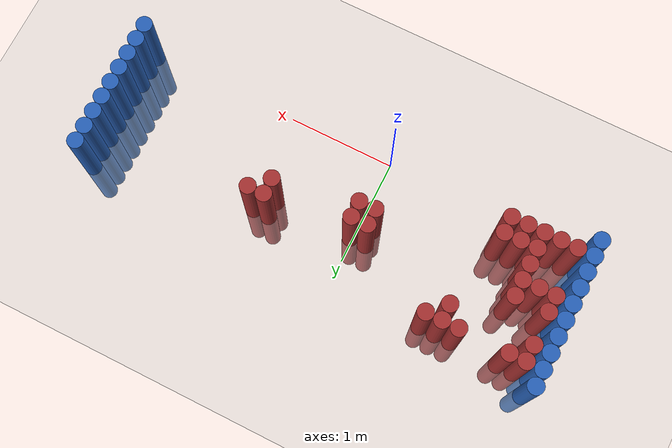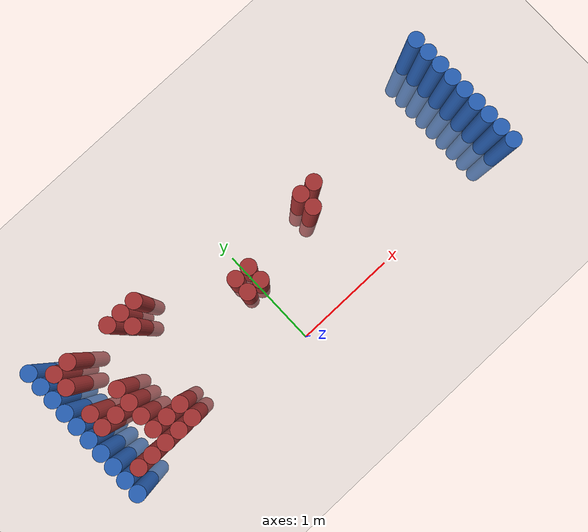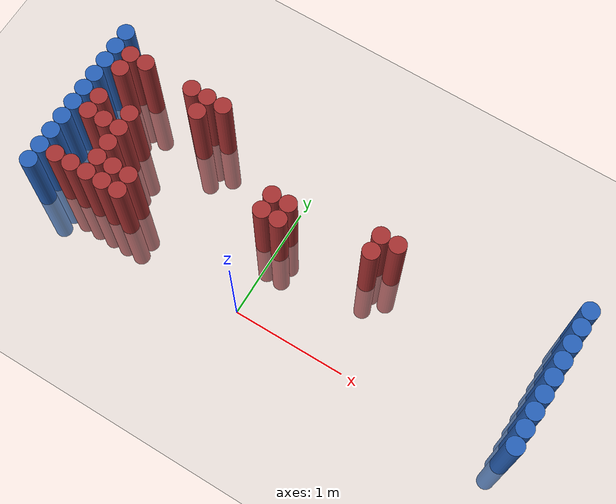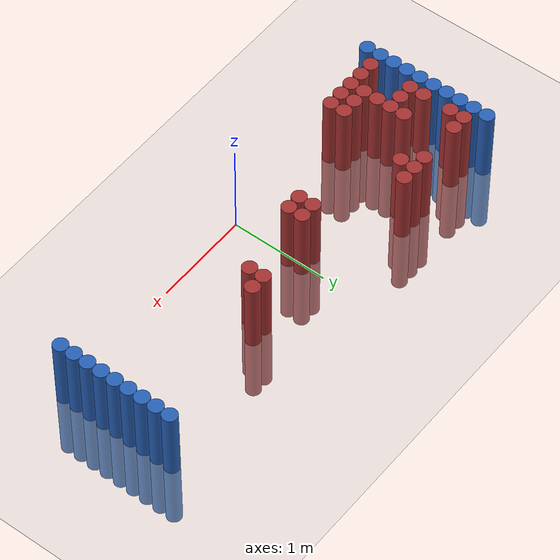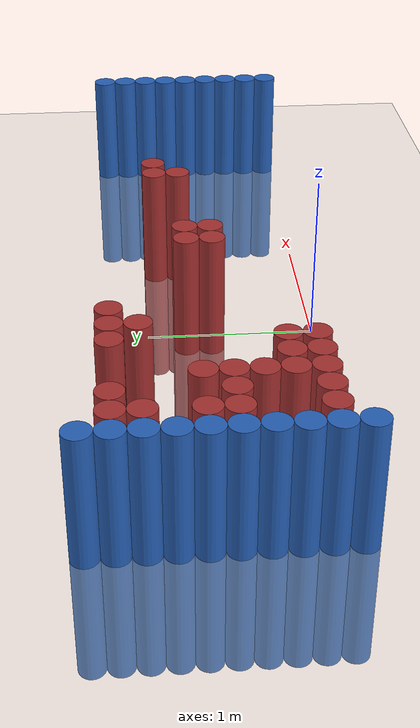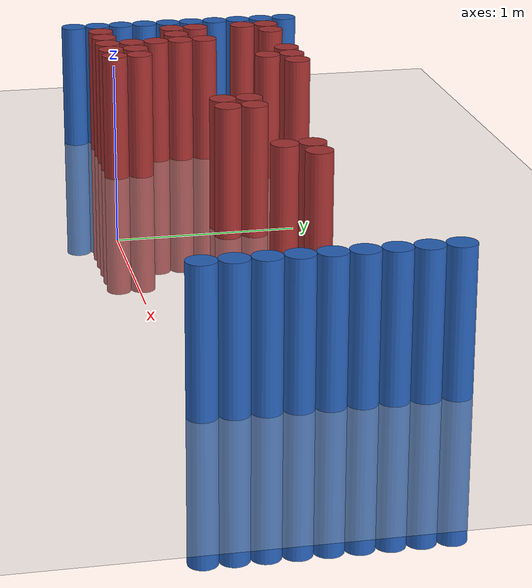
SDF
<sdf version="1.6">
 <world name="default">
  <model name="ground_plane">
   <static>1</static>
   <link name="link">
    <collision name="collision">
     <geometry><plane><normal>0 0 1</normal><size>100 100</size></plane></geometry>
     <surface><friction><ode><mu>100</mu><mu2>50</mu2></ode></friction></surface>
    </collision>
    <visual name="visual">
     <cast_shadows>0</cast_shadows>
     <geometry><plane><normal>0 0 1</normal><size>100 100</size></plane></geometry>
     <material>
      <script><uri>file://media/materials/scripts/gazebo.material</uri><name>Gazebo/Grey</name></script>
     </material>
    </visual>
   </link>
  </model>
  <model name="unit_cylinder_94">
   <static>1</static>
   <pose>2.425000 0.025000 0.000000 0.000000 0.000000 0.000000</pose>
   <link name="link">
    <inertial>
     <mass>1</mass>
     <inertia><ixx>0.145833</ixx><ixy>0</ixy><ixz>0</ixz><iyy>0.145833</iyy><iyz>0</iyz><izz>0.125</izz></inertia>
    </inertial>
    <collision name="collision">
     <geometry><cylinder><radius>0.075000</radius><length>1.5</length></cylinder></geometry>
    </collision>
    <visual name="visual">
     <geometry><cylinder><radius>0.075000</radius><length>1.5</length></cylinder></geometry>
     <material>
      <ambient>0.152000 0.379000 0.720000 1</ambient>
      <diffuse>0.152000 0.379000 0.720000 1</diffuse>
     </material>
     <material>
      <script><name>Gazebo/Grey</name><uri>file://media/materials/scripts/gazebo.material</uri></script>
     </material>
    </visual>
   </link>
  </model>
  <model name="unit_cylinder_95">
   <static>1</static>
   <pose>-1.925000 0.025000 0.000000 0.000000 0.000000 0.000000</pose>
   <link name="link">
    <inertial>
     <mass>1</mass>
     <inertia><ixx>0.145833</ixx><ixy>0</ixy><ixz>0</ixz><iyy>0.145833</iyy><iyz>0</iyz><izz>0.125</izz></inertia>
    </inertial>
    <collision name="collision">
     <geometry><cylinder><radius>0.075000</radius><length>1.5</length></cylinder></geometry>
    </collision>
    <visual name="visual">
     <geometry><cylinder><radius>0.075000</radius><length>1.5</length></cylinder></geometry>
     <material>
      <ambient>0.152000 0.379000 0.720000 1</ambient>
      <diffuse>0.152000 0.379000 0.720000 1</diffuse>
     </material>
     <material>
      <script><name>Gazebo/Grey</name><uri>file://media/materials/scripts/gazebo.material</uri></script>
     </material>
    </visual>
   </link>
  </model>
  <model name="unit_cylinder_96">
   <static>1</static>
   <pose>-1.925000 0.175000 0.000000 0.000000 0.000000 0.000000</pose>
   <link name="link">
    <inertial>
     <mass>1</mass>
     <inertia><ixx>0.145833</ixx><ixy>0</ixy><ixz>0</ixz><iyy>0.145833</iyy><iyz>0</iyz><izz>0.125</izz></inertia>
    </inertial>
    <collision name="collision">
     <geometry><cylinder><radius>0.075000</radius><length>1.5</length></cylinder></geometry>
    </collision>
    <visual name="visual">
     <geometry><cylinder><radius>0.075000</radius><length>1.5</length></cylinder></geometry>
     <material>
      <ambient>0.152000 0.379000 0.720000 1</ambient>
      <diffuse>0.152000 0.379000 0.720000 1</diffuse>
     </material>
     <material>
      <script><name>Gazebo/Grey</name><uri>file://media/materials/scripts/gazebo.material</uri></script>
     </material>
    </visual>
   </link>
  </model>
  <model name="unit_cylinder_97">
   <static>1</static>
   <pose>-1.925000 0.325000 0.000000 0.000000 0.000000 0.000000</pose>
   <link name="link">
    <inertial>
     <mass>1</mass>
     <inertia><ixx>0.145833</ixx><ixy>0</ixy><ixz>0</ixz><iyy>0.145833</iyy><iyz>0</iyz><izz>0.125</izz></inertia>
    </inertial>
    <collision name="collision">
     <geometry><cylinder><radius>0.075000</radius><length>1.5</length></cylinder></geometry>
    </collision>
    <visual name="visual">
     <geometry><cylinder><radius>0.075000</radius><length>1.5</length></cylinder></geometry>
     <material>
      <ambient>0.152000 0.379000 0.720000 1</ambient>
      <diffuse>0.152000 0.379000 0.720000 1</diffuse>
     </material>
     <material>
      <script><name>Gazebo/Grey</name><uri>file://media/materials/scripts/gazebo.material</uri></script>
     </material>
    </visual>
   </link>
  </model>
  <model name="unit_cylinder_98">
   <static>1</static>
   <pose>-1.925000 0.475000 0.000000 0.000000 0.000000 0.000000</pose>
   <link name="link">
    <inertial>
     <mass>1</mass>
     <inertia><ixx>0.145833</ixx><ixy>0</ixy><ixz>0</ixz><iyy>0.145833</iyy><iyz>0</iyz><izz>0.125</izz></inertia>
    </inertial>
    <collision name="collision">
     <geometry><cylinder><radius>0.075000</radius><length>1.5</length></cylinder></geometry>
    </collision>
    <visual name="visual">
     <geometry><cylinder><radius>0.075000</radius><length>1.5</length></cylinder></geometry>
     <material>
      <ambient>0.152000 0.379000 0.720000 1</ambient>
      <diffuse>0.152000 0.379000 0.720000 1</diffuse>
     </material>
     <material>
      <script><name>Gazebo/Grey</name><uri>file://media/materials/scripts/gazebo.material</uri></script>
     </material>
    </visual>
   </link>
  </model>
  <model name="unit_cylinder_99">
   <static>1</static>
   <pose>-1.925000 0.625000 0.000000 0.000000 0.000000 0.000000</pose>
   <link name="link">
    <inertial>
     <mass>1</mass>
     <inertia><ixx>0.145833</ixx><ixy>0</ixy><ixz>0</ixz><iyy>0.145833</iyy><iyz>0</iyz><izz>0.125</izz></inertia>
    </inertial>
    <collision name="collision">
     <geometry><cylinder><radius>0.075000</radius><length>1.5</length></cylinder></geometry>
    </collision>
    <visual name="visual">
     <geometry><cylinder><radius>0.075000</radius><length>1.5</length></cylinder></geometry>
     <material>
      <ambient>0.152000 0.379000 0.720000 1</ambient>
      <diffuse>0.152000 0.379000 0.720000 1</diffuse>
     </material>
     <material>
      <script><name>Gazebo/Grey</name><uri>file://media/materials/scripts/gazebo.material</uri></script>
     </material>
    </visual>
   </link>
  </model>
  <model name="unit_cylinder_100">
   <static>1</static>
   <pose>-1.925000 0.775000 0.000000 0.000000 0.000000 0.000000</pose>
   <link name="link">
    <inertial>
     <mass>1</mass>
     <inertia><ixx>0.145833</ixx><ixy>0</ixy><ixz>0</ixz><iyy>0.145833</iyy><iyz>0</iyz><izz>0.125</izz></inertia>
    </inertial>
    <collision name="collision">
     <geometry><cylinder><radius>0.075000</radius><length>1.5</length></cylinder></geometry>
    </collision>
    <visual name="visual">
     <geometry><cylinder><radius>0.075000</radius><length>1.5</length></cylinder></geometry>
     <material>
      <ambient>0.152000 0.379000 0.720000 1</ambient>
      <diffuse>0.152000 0.379000 0.720000 1</diffuse>
     </material>
     <material>
      <script><name>Gazebo/Grey</name><uri>file://media/materials/scripts/gazebo.material</uri></script>
     </material>
    </visual>
   </link>
  </model>
  <model name="unit_cylinder_101">
   <static>1</static>
   <pose>-1.925000 0.925000 0.000000 0.000000 0.000000 0.000000</pose>
   <link name="link">
    <inertial>
     <mass>1</mass>
     <inertia><ixx>0.145833</ixx><ixy>0</ixy><ixz>0</ixz><iyy>0.145833</iyy><iyz>0</iyz><izz>0.125</izz></inertia>
    </inertial>
    <collision name="collision">
     <geometry><cylinder><radius>0.075000</radius><length>1.5</length></cylinder></geometry>
    </collision>
    <visual name="visual">
     <geometry><cylinder><radius>0.075000</radius><length>1.5</length></cylinder></geometry>
     <material>
      <ambient>0.152000 0.379000 0.720000 1</ambient>
      <diffuse>0.152000 0.379000 0.720000 1</diffuse>
     </material>
     <material>
      <script><name>Gazebo/Grey</name><uri>file://media/materials/scripts/gazebo.material</uri></script>
     </material>
    </visual>
   </link>
  </model>
  <model name="unit_cylinder_102">
   <static>1</static>
   <pose>-1.925000 1.075000 0.000000 0.000000 0.000000 0.000000</pose>
   <link name="link">
    <inertial>
     <mass>1</mass>
     <inertia><ixx>0.145833</ixx><ixy>0</ixy><ixz>0</ixz><iyy>0.145833</iyy><iyz>0</iyz><izz>0.125</izz></inertia>
    </inertial>
    <collision name="collision">
     <geometry><cylinder><radius>0.075000</radius><length>1.5</length></cylinder></geometry>
    </collision>
    <visual name="visual">
     <geometry><cylinder><radius>0.075000</radius><length>1.5</length></cylinder></geometry>
     <material>
      <ambient>0.152000 0.379000 0.720000 1</ambient>
      <diffuse>0.152000 0.379000 0.720000 1</diffuse>
     </material>
     <material>
      <script><name>Gazebo/Grey</name><uri>file://media/materials/scripts/gazebo.material</uri></script>
     </material>
    </visual>
   </link>
  </model>
  <model name="unit_cylinder_103">
   <static>1</static>
   <pose>-1.925000 1.225000 0.000000 0.000000 0.000000 0.000000</pose>
   <link name="link">
    <inertial>
     <mass>1</mass>
     <inertia><ixx>0.145833</ixx><ixy>0</ixy><ixz>0</ixz><iyy>0.145833</iyy><iyz>0</iyz><izz>0.125</izz></inertia>
    </inertial>
    <collision name="collision">
     <geometry><cylinder><radius>0.075000</radius><length>1.5</length></cylinder></geometry>
    </collision>
    <visual name="visual">
     <geometry><cylinder><radius>0.075000</radius><length>1.5</length></cylinder></geometry>
     <material>
      <ambient>0.152000 0.379000 0.720000 1</ambient>
      <diffuse>0.152000 0.379000 0.720000 1</diffuse>
     </material>
     <material>
      <script><name>Gazebo/Grey</name><uri>file://media/materials/scripts/gazebo.material</uri></script>
     </material>
    </visual>
   </link>
  </model>
  <model name="unit_cylinder_104">
   <static>1</static>
   <pose>-1.925000 1.375000 0.000000 0.000000 0.000000 0.000000</pose>
   <link name="link">
    <inertial>
     <mass>1</mass>
     <inertia><ixx>0.145833</ixx><ixy>0</ixy><ixz>0</ixz><iyy>0.145833</iyy><iyz>0</iyz><izz>0.125</izz></inertia>
    </inertial>
    <collision name="collision">
     <geometry><cylinder><radius>0.075000</radius><length>1.5</length></cylinder></geometry>
    </collision>
    <visual name="visual">
     <geometry><cylinder><radius>0.075000</radius><length>1.5</length></cylinder></geometry>
     <material>
      <ambient>0.152000 0.379000 0.720000 1</ambient>
      <diffuse>0.152000 0.379000 0.720000 1</diffuse>
     </material>
     <material>
      <script><name>Gazebo/Grey</name><uri>file://media/materials/scripts/gazebo.material</uri></script>
     </material>
    </visual>
   </link>
  </model>
  <model name="unit_cylinder_126">
   <static>1</static>
   <pose>-1.775000 0.175000 0.000000 0.000000 0.000000 0.000000</pose>
   <link name="link">
    <inertial>
     <mass>1</mass>
     <inertia><ixx>0.145833</ixx><ixy>0</ixy><ixz>0</ixz><iyy>0.145833</iyy><iyz>0</iyz><izz>0.125</izz></inertia>
    </inertial>
    <collision name="collision">
     <geometry><cylinder><radius>0.075000</radius><length>1.5</length></cylinder></geometry>
    </collision>
    <visual name="visual">
     <geometry><cylinder><radius>0.075000</radius><length>1.5</length></cylinder></geometry>
     <material>
      <ambient>0.648000 0.192000 0.192000 1</ambient>
      <diffuse>0.648000 0.192000 0.192000 1</diffuse>
     </material>
     <material>
      <script><name>Gazebo/Grey</name><uri>file://media/materials/scripts/gazebo.material</uri></script>
     </material>
    </visual>
   </link>
  </model>
  <model name="unit_cylinder_127">
   <static>1</static>
   <pose>-1.775000 0.625000 0.000000 0.000000 0.000000 0.000000</pose>
   <link name="link">
    <inertial>
     <mass>1</mass>
     <inertia><ixx>0.145833</ixx><ixy>0</ixy><ixz>0</ixz><iyy>0.145833</iyy><iyz>0</iyz><izz>0.125</izz></inertia>
    </inertial>
    <collision name="collision">
     <geometry><cylinder><radius>0.075000</radius><length>1.5</length></cylinder></geometry>
    </collision>
    <visual name="visual">
     <geometry><cylinder><radius>0.075000</radius><length>1.5</length></cylinder></geometry>
     <material>
      <ambient>0.648000 0.192000 0.192000 1</ambient>
      <diffuse>0.648000 0.192000 0.192000 1</diffuse>
     </material>
     <material>
      <script><name>Gazebo/Grey</name><uri>file://media/materials/scripts/gazebo.material</uri></script>
     </material>
    </visual>
   </link>
  </model>
  <model name="unit_cylinder_128">
   <static>1</static>
   <pose>-1.775000 0.775000 0.000000 0.000000 0.000000 0.000000</pose>
   <link name="link">
    <inertial>
     <mass>1</mass>
     <inertia><ixx>0.145833</ixx><ixy>0</ixy><ixz>0</ixz><iyy>0.145833</iyy><iyz>0</iyz><izz>0.125</izz></inertia>
    </inertial>
    <collision name="collision">
     <geometry><cylinder><radius>0.075000</radius><length>1.5</length></cylinder></geometry>
    </collision>
    <visual name="visual">
     <geometry><cylinder><radius>0.075000</radius><length>1.5</length></cylinder></geometry>
     <material>
      <ambient>0.648000 0.192000 0.192000 1</ambient>
      <diffuse>0.648000 0.192000 0.192000 1</diffuse>
     </material>
     <material>
      <script><name>Gazebo/Grey</name><uri>file://media/materials/scripts/gazebo.material</uri></script>
     </material>
    </visual>
   </link>
  </model>
  <model name="unit_cylinder_129">
   <static>1</static>
   <pose>-1.775000 1.075000 0.000000 0.000000 0.000000 0.000000</pose>
   <link name="link">
    <inertial>
     <mass>1</mass>
     <inertia><ixx>0.145833</ixx><ixy>0</ixy><ixz>0</ixz><iyy>0.145833</iyy><iyz>0</iyz><izz>0.125</izz></inertia>
    </inertial>
    <collision name="collision">
     <geometry><cylinder><radius>0.075000</radius><length>1.5</length></cylinder></geometry>
    </collision>
    <visual name="visual">
     <geometry><cylinder><radius>0.075000</radius><length>1.5</length></cylinder></geometry>
     <material>
      <ambient>0.648000 0.192000 0.192000 1</ambient>
      <diffuse>0.648000 0.192000 0.192000 1</diffuse>
     </material>
     <material>
      <script><name>Gazebo/Grey</name><uri>file://media/materials/scripts/gazebo.material</uri></script>
     </material>
    </visual>
   </link>
  </model>
  <model name="unit_cylinder_130">
   <static>1</static>
   <pose>-1.775000 1.225000 0.000000 0.000000 0.000000 0.000000</pose>
   <link name="link">
    <inertial>
     <mass>1</mass>
     <inertia><ixx>0.145833</ixx><ixy>0</ixy><ixz>0</ixz><iyy>0.145833</iyy><iyz>0</iyz><izz>0.125</izz></inertia>
    </inertial>
    <collision name="collision">
     <geometry><cylinder><radius>0.075000</radius><length>1.5</length></cylinder></geometry>
    </collision>
    <visual name="visual">
     <geometry><cylinder><radius>0.075000</radius><length>1.5</length></cylinder></geometry>
     <material>
      <ambient>0.648000 0.192000 0.192000 1</ambient>
      <diffuse>0.648000 0.192000 0.192000 1</diffuse>
     </material>
     <material>
      <script><name>Gazebo/Grey</name><uri>file://media/materials/scripts/gazebo.material</uri></script>
     </material>
    </visual>
   </link>
  </model>
  <model name="unit_cylinder_145">
   <static>1</static>
   <pose>-1.625000 0.175000 0.000000 0.000000 0.000000 0.000000</pose>
   <link name="link">
    <inertial>
     <mass>1</mass>
     <inertia><ixx>0.145833</ixx><ixy>0</ixy><ixz>0</ixz><iyy>0.145833</iyy><iyz>0</iyz><izz>0.125</izz></inertia>
    </inertial>
    <collision name="collision">
     <geometry><cylinder><radius>0.075000</radius><length>1.5</length></cylinder></geometry>
    </collision>
    <visual name="visual">
     <geometry><cylinder><radius>0.075000</radius><length>1.5</length></cylinder></geometry>
     <material>
      <ambient>0.648000 0.192000 0.192000 1</ambient>
      <diffuse>0.648000 0.192000 0.192000 1</diffuse>
     </material>
     <material>
      <script><name>Gazebo/Grey</name><uri>file://media/materials/scripts/gazebo.material</uri></script>
     </material>
    </visual>
   </link>
  </model>
  <model name="unit_cylinder_146">
   <static>1</static>
   <pose>-1.625000 0.625000 0.000000 0.000000 0.000000 0.000000</pose>
   <link name="link">
    <inertial>
     <mass>1</mass>
     <inertia><ixx>0.145833</ixx><ixy>0</ixy><ixz>0</ixz><iyy>0.145833</iyy><iyz>0</iyz><izz>0.125</izz></inertia>
    </inertial>
    <collision name="collision">
     <geometry><cylinder><radius>0.075000</radius><length>1.5</length></cylinder></geometry>
    </collision>
    <visual name="visual">
     <geometry><cylinder><radius>0.075000</radius><length>1.5</length></cylinder></geometry>
     <material>
      <ambient>0.648000 0.192000 0.192000 1</ambient>
      <diffuse>0.648000 0.192000 0.192000 1</diffuse>
     </material>
     <material>
      <script><name>Gazebo/Grey</name><uri>file://media/materials/scripts/gazebo.material</uri></script>
     </material>
    </visual>
   </link>
  </model>
  <model name="unit_cylinder_147">
   <static>1</static>
   <pose>-1.625000 1.225000 0.000000 0.000000 0.000000 0.000000</pose>
   <link name="link">
    <inertial>
     <mass>1</mass>
     <inertia><ixx>0.145833</ixx><ixy>0</ixy><ixz>0</ixz><iyy>0.145833</iyy><iyz>0</iyz><izz>0.125</izz></inertia>
    </inertial>
    <collision name="collision">
     <geometry><cylinder><radius>0.075000</radius><length>1.5</length></cylinder></geometry>
    </collision>
    <visual name="visual">
     <geometry><cylinder><radius>0.075000</radius><length>1.5</length></cylinder></geometry>
     <material>
      <ambient>0.648000 0.192000 0.192000 1</ambient>
      <diffuse>0.648000 0.192000 0.192000 1</diffuse>
     </material>
     <material>
      <script><name>Gazebo/Grey</name><uri>file://media/materials/scripts/gazebo.material</uri></script>
     </material>
    </visual>
   </link>
  </model>
  <model name="unit_cylinder_155">
   <static>1</static>
   <pose>-1.475000 0.175000 0.000000 0.000000 0.000000 0.000000</pose>
   <link name="link">
    <inertial>
     <mass>1</mass>
     <inertia><ixx>0.145833</ixx><ixy>0</ixy><ixz>0</ixz><iyy>0.145833</iyy><iyz>0</iyz><izz>0.125</izz></inertia>
    </inertial>
    <collision name="collision">
     <geometry><cylinder><radius>0.075000</radius><length>1.5</length></cylinder></geometry>
    </collision>
    <visual name="visual">
     <geometry><cylinder><radius>0.075000</radius><length>1.5</length></cylinder></geometry>
     <material>
      <ambient>0.648000 0.192000 0.192000 1</ambient>
      <diffuse>0.648000 0.192000 0.192000 1</diffuse>
     </material>
     <material>
      <script><name>Gazebo/Grey</name><uri>file://media/materials/scripts/gazebo.material</uri></script>
     </material>
    </visual>
   </link>
  </model>
  <model name="unit_cylinder_156">
   <static>1</static>
   <pose>-1.475000 0.325000 0.000000 0.000000 0.000000 0.000000</pose>
   <link name="link">
    <inertial>
     <mass>1</mass>
     <inertia><ixx>0.145833</ixx><ixy>0</ixy><ixz>0</ixz><iyy>0.145833</iyy><iyz>0</iyz><izz>0.125</izz></inertia>
    </inertial>
    <collision name="collision">
     <geometry><cylinder><radius>0.075000</radius><length>1.5</length></cylinder></geometry>
    </collision>
    <visual name="visual">
     <geometry><cylinder><radius>0.075000</radius><length>1.5</length></cylinder></geometry>
     <material>
      <ambient>0.648000 0.192000 0.192000 1</ambient>
      <diffuse>0.648000 0.192000 0.192000 1</diffuse>
     </material>
     <material>
      <script><name>Gazebo/Grey</name><uri>file://media/materials/scripts/gazebo.material</uri></script>
     </material>
    </visual>
   </link>
  </model>
  <model name="unit_cylinder_157">
   <static>1</static>
   <pose>-1.475000 0.475000 0.000000 0.000000 0.000000 0.000000</pose>
   <link name="link">
    <inertial>
     <mass>1</mass>
     <inertia><ixx>0.145833</ixx><ixy>0</ixy><ixz>0</ixz><iyy>0.145833</iyy><iyz>0</iyz><izz>0.125</izz></inertia>
    </inertial>
    <collision name="collision">
     <geometry><cylinder><radius>0.075000</radius><length>1.5</length></cylinder></geometry>
    </collision>
    <visual name="visual">
     <geometry><cylinder><radius>0.075000</radius><length>1.5</length></cylinder></geometry>
     <material>
      <ambient>0.648000 0.192000 0.192000 1</ambient>
      <diffuse>0.648000 0.192000 0.192000 1</diffuse>
     </material>
     <material>
      <script><name>Gazebo/Grey</name><uri>file://media/materials/scripts/gazebo.material</uri></script>
     </material>
    </visual>
   </link>
  </model>
  <model name="unit_cylinder_158">
   <static>1</static>
   <pose>-1.475000 0.625000 0.000000 0.000000 0.000000 0.000000</pose>
   <link name="link">
    <inertial>
     <mass>1</mass>
     <inertia><ixx>0.145833</ixx><ixy>0</ixy><ixz>0</ixz><iyy>0.145833</iyy><iyz>0</iyz><izz>0.125</izz></inertia>
    </inertial>
    <collision name="collision">
     <geometry><cylinder><radius>0.075000</radius><length>1.5</length></cylinder></geometry>
    </collision>
    <visual name="visual">
     <geometry><cylinder><radius>0.075000</radius><length>1.5</length></cylinder></geometry>
     <material>
      <ambient>0.648000 0.192000 0.192000 1</ambient>
      <diffuse>0.648000 0.192000 0.192000 1</diffuse>
     </material>
     <material>
      <script><name>Gazebo/Grey</name><uri>file://media/materials/scripts/gazebo.material</uri></script>
     </material>
    </visual>
   </link>
  </model>
  <model name="unit_cylinder_159">
   <static>1</static>
   <pose>-1.475000 0.775000 0.000000 0.000000 0.000000 0.000000</pose>
   <link name="link">
    <inertial>
     <mass>1</mass>
     <inertia><ixx>0.145833</ixx><ixy>0</ixy><ixz>0</ixz><iyy>0.145833</iyy><iyz>0</iyz><izz>0.125</izz></inertia>
    </inertial>
    <collision name="collision">
     <geometry><cylinder><radius>0.075000</radius><length>1.5</length></cylinder></geometry>
    </collision>
    <visual name="visual">
     <geometry><cylinder><radius>0.075000</radius><length>1.5</length></cylinder></geometry>
     <material>
      <ambient>0.648000 0.192000 0.192000 1</ambient>
      <diffuse>0.648000 0.192000 0.192000 1</diffuse>
     </material>
     <material>
      <script><name>Gazebo/Grey</name><uri>file://media/materials/scripts/gazebo.material</uri></script>
     </material>
    </visual>
   </link>
  </model>
  <model name="unit_cylinder_163">
   <static>1</static>
   <pose>-1.325000 0.175000 0.000000 0.000000 0.000000 0.000000</pose>
   <link name="link">
    <inertial>
     <mass>1</mass>
     <inertia><ixx>0.145833</ixx><ixy>0</ixy><ixz>0</ixz><iyy>0.145833</iyy><iyz>0</iyz><izz>0.125</izz></inertia>
    </inertial>
    <collision name="collision">
     <geometry><cylinder><radius>0.075000</radius><length>1.5</length></cylinder></geometry>
    </collision>
    <visual name="visual">
     <geometry><cylinder><radius>0.075000</radius><length>1.5</length></cylinder></geometry>
     <material>
      <ambient>0.648000 0.192000 0.192000 1</ambient>
      <diffuse>0.648000 0.192000 0.192000 1</diffuse>
     </material>
     <material>
      <script><name>Gazebo/Grey</name><uri>file://media/materials/scripts/gazebo.material</uri></script>
     </material>
    </visual>
   </link>
  </model>
  <model name="unit_cylinder_164">
   <static>1</static>
   <pose>-1.325000 0.325000 0.000000 0.000000 0.000000 0.000000</pose>
   <link name="link">
    <inertial>
     <mass>1</mass>
     <inertia><ixx>0.145833</ixx><ixy>0</ixy><ixz>0</ixz><iyy>0.145833</iyy><iyz>0</iyz><izz>0.125</izz></inertia>
    </inertial>
    <collision name="collision">
     <geometry><cylinder><radius>0.075000</radius><length>1.5</length></cylinder></geometry>
    </collision>
    <visual name="visual">
     <geometry><cylinder><radius>0.075000</radius><length>1.5</length></cylinder></geometry>
     <material>
      <ambient>0.648000 0.192000 0.192000 1</ambient>
      <diffuse>0.648000 0.192000 0.192000 1</diffuse>
     </material>
     <material>
      <script><name>Gazebo/Grey</name><uri>file://media/materials/scripts/gazebo.material</uri></script>
     </material>
    </visual>
   </link>
  </model>
  <model name="unit_cylinder_165">
   <static>1</static>
   <pose>-1.175000 0.175000 0.000000 0.000000 0.000000 0.000000</pose>
   <link name="link">
    <inertial>
     <mass>1</mass>
     <inertia><ixx>0.145833</ixx><ixy>0</ixy><ixz>0</ixz><iyy>0.145833</iyy><iyz>0</iyz><izz>0.125</izz></inertia>
    </inertial>
    <collision name="collision">
     <geometry><cylinder><radius>0.075000</radius><length>1.5</length></cylinder></geometry>
    </collision>
    <visual name="visual">
     <geometry><cylinder><radius>0.075000</radius><length>1.5</length></cylinder></geometry>
     <material>
      <ambient>0.648000 0.192000 0.192000 1</ambient>
      <diffuse>0.648000 0.192000 0.192000 1</diffuse>
     </material>
     <material>
      <script><name>Gazebo/Grey</name><uri>file://media/materials/scripts/gazebo.material</uri></script>
     </material>
    </visual>
   </link>
  </model>
  <model name="unit_cylinder_166">
   <static>1</static>
   <pose>-1.175000 0.325000 0.000000 0.000000 0.000000 0.000000</pose>
   <link name="link">
    <inertial>
     <mass>1</mass>
     <inertia><ixx>0.145833</ixx><ixy>0</ixy><ixz>0</ixz><iyy>0.145833</iyy><iyz>0</iyz><izz>0.125</izz></inertia>
    </inertial>
    <collision name="collision">
     <geometry><cylinder><radius>0.075000</radius><length>1.5</length></cylinder></geometry>
    </collision>
    <visual name="visual">
     <geometry><cylinder><radius>0.075000</radius><length>1.5</length></cylinder></geometry>
     <material>
      <ambient>0.648000 0.192000 0.192000 1</ambient>
      <diffuse>0.648000 0.192000 0.192000 1</diffuse>
     </material>
     <material>
      <script><name>Gazebo/Grey</name><uri>file://media/materials/scripts/gazebo.material</uri></script>
     </material>
    </visual>
   </link>
  </model>
  <model name="unit_cylinder_167">
   <static>1</static>
   <pose>-1.175000 1.225000 0.000000 0.000000 0.000000 0.000000</pose>
   <link name="link">
    <inertial>
     <mass>1</mass>
     <inertia><ixx>0.145833</ixx><ixy>0</ixy><ixz>0</ixz><iyy>0.145833</iyy><iyz>0</iyz><izz>0.125</izz></inertia>
    </inertial>
    <collision name="collision">
     <geometry><cylinder><radius>0.075000</radius><length>1.5</length></cylinder></geometry>
    </collision>
    <visual name="visual">
     <geometry><cylinder><radius>0.075000</radius><length>1.5</length></cylinder></geometry>
     <material>
      <ambient>0.648000 0.192000 0.192000 1</ambient>
      <diffuse>0.648000 0.192000 0.192000 1</diffuse>
     </material>
     <material>
      <script><name>Gazebo/Grey</name><uri>file://media/materials/scripts/gazebo.material</uri></script>
     </material>
    </visual>
   </link>
  </model>
  <model name="unit_cylinder_168">
   <static>1</static>
   <pose>-1.025000 1.075000 0.000000 0.000000 0.000000 0.000000</pose>
   <link name="link">
    <inertial>
     <mass>1</mass>
     <inertia><ixx>0.145833</ixx><ixy>0</ixy><ixz>0</ixz><iyy>0.145833</iyy><iyz>0</iyz><izz>0.125</izz></inertia>
    </inertial>
    <collision name="collision">
     <geometry><cylinder><radius>0.075000</radius><length>1.5</length></cylinder></geometry>
    </collision>
    <visual name="visual">
     <geometry><cylinder><radius>0.075000</radius><length>1.5</length></cylinder></geometry>
     <material>
      <ambient>0.648000 0.192000 0.192000 1</ambient>
      <diffuse>0.648000 0.192000 0.192000 1</diffuse>
     </material>
     <material>
      <script><name>Gazebo/Grey</name><uri>file://media/materials/scripts/gazebo.material</uri></script>
     </material>
    </visual>
   </link>
  </model>
  <model name="unit_cylinder_169">
   <static>1</static>
   <pose>-1.025000 1.225000 0.000000 0.000000 0.000000 0.000000</pose>
   <link name="link">
    <inertial>
     <mass>1</mass>
     <inertia><ixx>0.145833</ixx><ixy>0</ixy><ixz>0</ixz><iyy>0.145833</iyy><iyz>0</iyz><izz>0.125</izz></inertia>
    </inertial>
    <collision name="collision">
     <geometry><cylinder><radius>0.075000</radius><length>1.5</length></cylinder></geometry>
    </collision>
    <visual name="visual">
     <geometry><cylinder><radius>0.075000</radius><length>1.5</length></cylinder></geometry>
     <material>
      <ambient>0.648000 0.192000 0.192000 1</ambient>
      <diffuse>0.648000 0.192000 0.192000 1</diffuse>
     </material>
     <material>
      <script><name>Gazebo/Grey</name><uri>file://media/materials/scripts/gazebo.material</uri></script>
     </material>
    </visual>
   </link>
  </model>
  <model name="unit_cylinder_171">
   <static>1</static>
   <pose>-0.875000 1.225000 0.000000 0.000000 0.000000 0.000000</pose>
   <link name="link">
    <inertial>
     <mass>1</mass>
     <inertia><ixx>0.145833</ixx><ixy>0</ixy><ixz>0</ixz><iyy>0.145833</iyy><iyz>0</iyz><izz>0.125</izz></inertia>
    </inertial>
    <collision name="collision">
     <geometry><cylinder><radius>0.075000</radius><length>1.5</length></cylinder></geometry>
    </collision>
    <visual name="visual">
     <geometry><cylinder><radius>0.075000</radius><length>1.5</length></cylinder></geometry>
     <material>
      <ambient>0.648000 0.192000 0.192000 1</ambient>
      <diffuse>0.648000 0.192000 0.192000 1</diffuse>
     </material>
     <material>
      <script><name>Gazebo/Grey</name><uri>file://media/materials/scripts/gazebo.material</uri></script>
     </material>
    </visual>
   </link>
  </model>
  <model name="unit_cylinder_173">
   <static>1</static>
   <pose>-0.125000 0.625000 0.000000 0.000000 0.000000 0.000000</pose>
   <link name="link">
    <inertial>
     <mass>1</mass>
     <inertia><ixx>0.145833</ixx><ixy>0</ixy><ixz>0</ixz><iyy>0.145833</iyy><iyz>0</iyz><izz>0.125</izz></inertia>
    </inertial>
    <collision name="collision">
     <geometry><cylinder><radius>0.075000</radius><length>1.5</length></cylinder></geometry>
    </collision>
    <visual name="visual">
     <geometry><cylinder><radius>0.075000</radius><length>1.5</length></cylinder></geometry>
     <material>
      <ambient>0.648000 0.192000 0.192000 1</ambient>
      <diffuse>0.648000 0.192000 0.192000 1</diffuse>
     </material>
     <material>
      <script><name>Gazebo/Grey</name><uri>file://media/materials/scripts/gazebo.material</uri></script>
     </material>
    </visual>
   </link>
  </model>
  <model name="unit_cylinder_174">
   <static>1</static>
   <pose>-0.125000 0.775000 0.000000 0.000000 0.000000 0.000000</pose>
   <link name="link">
    <inertial>
     <mass>1</mass>
     <inertia><ixx>0.145833</ixx><ixy>0</ixy><ixz>0</ixz><iyy>0.145833</iyy><iyz>0</iyz><izz>0.125</izz></inertia>
    </inertial>
    <collision name="collision">
     <geometry><cylinder><radius>0.075000</radius><length>1.5</length></cylinder></geometry>
    </collision>
    <visual name="visual">
     <geometry><cylinder><radius>0.075000</radius><length>1.5</length></cylinder></geometry>
     <material>
      <ambient>0.648000 0.192000 0.192000 1</ambient>
      <diffuse>0.648000 0.192000 0.192000 1</diffuse>
     </material>
     <material>
      <script><name>Gazebo/Grey</name><uri>file://media/materials/scripts/gazebo.material</uri></script>
     </material>
    </visual>
   </link>
  </model>
  <model name="unit_cylinder_178">
   <static>1</static>
   <pose>0.025000 0.625000 0.000000 0.000000 0.000000 0.000000</pose>
   <link name="link">
    <inertial>
     <mass>1</mass>
     <inertia><ixx>0.145833</ixx><ixy>0</ixy><ixz>0</ixz><iyy>0.145833</iyy><iyz>0</iyz><izz>0.125</izz></inertia>
    </inertial>
    <collision name="collision">
     <geometry><cylinder><radius>0.075000</radius><length>1.5</length></cylinder></geometry>
    </collision>
    <visual name="visual">
     <geometry><cylinder><radius>0.075000</radius><length>1.5</length></cylinder></geometry>
     <material>
      <ambient>0.648000 0.192000 0.192000 1</ambient>
      <diffuse>0.648000 0.192000 0.192000 1</diffuse>
     </material>
     <material>
      <script><name>Gazebo/Grey</name><uri>file://media/materials/scripts/gazebo.material</uri></script>
     </material>
    </visual>
   </link>
  </model>
  <model name="unit_cylinder_179">
   <static>1</static>
   <pose>0.025000 0.775000 0.000000 0.000000 0.000000 0.000000</pose>
   <link name="link">
    <inertial>
     <mass>1</mass>
     <inertia><ixx>0.145833</ixx><ixy>0</ixy><ixz>0</ixz><iyy>0.145833</iyy><iyz>0</iyz><izz>0.125</izz></inertia>
    </inertial>
    <collision name="collision">
     <geometry><cylinder><radius>0.075000</radius><length>1.5</length></cylinder></geometry>
    </collision>
    <visual name="visual">
     <geometry><cylinder><radius>0.075000</radius><length>1.5</length></cylinder></geometry>
     <material>
      <ambient>0.648000 0.192000 0.192000 1</ambient>
      <diffuse>0.648000 0.192000 0.192000 1</diffuse>
     </material>
     <material>
      <script><name>Gazebo/Grey</name><uri>file://media/materials/scripts/gazebo.material</uri></script>
     </material>
    </visual>
   </link>
  </model>
  <model name="unit_cylinder_196">
   <static>1</static>
   <pose>0.775000 0.775000 0.000000 0.000000 0.000000 0.000000</pose>
   <link name="link">
    <inertial>
     <mass>1</mass>
     <inertia><ixx>0.145833</ixx><ixy>0</ixy><ixz>0</ixz><iyy>0.145833</iyy><iyz>0</iyz><izz>0.125</izz></inertia>
    </inertial>
    <collision name="collision">
     <geometry><cylinder><radius>0.075000</radius><length>1.5</length></cylinder></geometry>
    </collision>
    <visual name="visual">
     <geometry><cylinder><radius>0.075000</radius><length>1.5</length></cylinder></geometry>
     <material>
      <ambient>0.648000 0.192000 0.192000 1</ambient>
      <diffuse>0.648000 0.192000 0.192000 1</diffuse>
     </material>
     <material>
      <script><name>Gazebo/Grey</name><uri>file://media/materials/scripts/gazebo.material</uri></script>
     </material>
    </visual>
   </link>
  </model>
  <model name="unit_cylinder_197">
   <static>1</static>
   <pose>0.775000 0.925000 0.000000 0.000000 0.000000 0.000000</pose>
   <link name="link">
    <inertial>
     <mass>1</mass>
     <inertia><ixx>0.145833</ixx><ixy>0</ixy><ixz>0</ixz><iyy>0.145833</iyy><iyz>0</iyz><izz>0.125</izz></inertia>
    </inertial>
    <collision name="collision">
     <geometry><cylinder><radius>0.075000</radius><length>1.5</length></cylinder></geometry>
    </collision>
    <visual name="visual">
     <geometry><cylinder><radius>0.075000</radius><length>1.5</length></cylinder></geometry>
     <material>
      <ambient>0.648000 0.192000 0.192000 1</ambient>
      <diffuse>0.648000 0.192000 0.192000 1</diffuse>
     </material>
     <material>
      <script><name>Gazebo/Grey</name><uri>file://media/materials/scripts/gazebo.material</uri></script>
     </material>
    </visual>
   </link>
  </model>
  <model name="unit_cylinder_202">
   <static>1</static>
   <pose>0.925000 0.925000 0.000000 0.000000 0.000000 0.000000</pose>
   <link name="link">
    <inertial>
     <mass>1</mass>
     <inertia><ixx>0.145833</ixx><ixy>0</ixy><ixz>0</ixz><iyy>0.145833</iyy><iyz>0</iyz><izz>0.125</izz></inertia>
    </inertial>
    <collision name="collision">
     <geometry><cylinder><radius>0.075000</radius><length>1.5</length></cylinder></geometry>
    </collision>
    <visual name="visual">
     <geometry><cylinder><radius>0.075000</radius><length>1.5</length></cylinder></geometry>
     <material>
      <ambient>0.648000 0.192000 0.192000 1</ambient>
      <diffuse>0.648000 0.192000 0.192000 1</diffuse>
     </material>
     <material>
      <script><name>Gazebo/Grey</name><uri>file://media/materials/scripts/gazebo.material</uri></script>
     </material>
    </visual>
   </link>
  </model>
  <model name="unit_cylinder_252">
   <static>1</static>
   <pose>2.425000 0.175000 0.000000 0.000000 0.000000 0.000000</pose>
   <link name="link">
    <inertial>
     <mass>1</mass>
     <inertia><ixx>0.145833</ixx><ixy>0</ixy><ixz>0</ixz><iyy>0.145833</iyy><iyz>0</iyz><izz>0.125</izz></inertia>
    </inertial>
    <collision name="collision">
     <geometry><cylinder><radius>0.075000</radius><length>1.5</length></cylinder></geometry>
    </collision>
    <visual name="visual">
     <geometry><cylinder><radius>0.075000</radius><length>1.5</length></cylinder></geometry>
     <material>
      <ambient>0.152000 0.379000 0.720000 1</ambient>
      <diffuse>0.152000 0.379000 0.720000 1</diffuse>
     </material>
     <material>
      <script><name>Gazebo/Grey</name><uri>file://media/materials/scripts/gazebo.material</uri></script>
     </material>
    </visual>
   </link>
  </model>
  <model name="unit_cylinder_253">
   <static>1</static>
   <pose>2.425000 0.325000 0.000000 0.000000 0.000000 0.000000</pose>
   <link name="link">
    <inertial>
     <mass>1</mass>
     <inertia><ixx>0.145833</ixx><ixy>0</ixy><ixz>0</ixz><iyy>0.145833</iyy><iyz>0</iyz><izz>0.125</izz></inertia>
    </inertial>
    <collision name="collision">
     <geometry><cylinder><radius>0.075000</radius><length>1.5</length></cylinder></geometry>
    </collision>
    <visual name="visual">
     <geometry><cylinder><radius>0.075000</radius><length>1.5</length></cylinder></geometry>
     <material>
      <ambient>0.152000 0.379000 0.720000 1</ambient>
      <diffuse>0.152000 0.379000 0.720000 1</diffuse>
     </material>
     <material>
      <script><name>Gazebo/Grey</name><uri>file://media/materials/scripts/gazebo.material</uri></script>
     </material>
    </visual>
   </link>
  </model>
  <model name="unit_cylinder_254">
   <static>1</static>
   <pose>2.425000 0.475000 0.000000 0.000000 0.000000 0.000000</pose>
   <link name="link">
    <inertial>
     <mass>1</mass>
     <inertia><ixx>0.145833</ixx><ixy>0</ixy><ixz>0</ixz><iyy>0.145833</iyy><iyz>0</iyz><izz>0.125</izz></inertia>
    </inertial>
    <collision name="collision">
     <geometry><cylinder><radius>0.075000</radius><length>1.5</length></cylinder></geometry>
    </collision>
    <visual name="visual">
     <geometry><cylinder><radius>0.075000</radius><length>1.5</length></cylinder></geometry>
     <material>
      <ambient>0.152000 0.379000 0.720000 1</ambient>
      <diffuse>0.152000 0.379000 0.720000 1</diffuse>
     </material>
     <material>
      <script><name>Gazebo/Grey</name><uri>file://media/materials/scripts/gazebo.material</uri></script>
     </material>
    </visual>
   </link>
  </model>
  <model name="unit_cylinder_255">
   <static>1</static>
   <pose>2.425000 0.625000 0.000000 0.000000 0.000000 0.000000</pose>
   <link name="link">
    <inertial>
     <mass>1</mass>
     <inertia><ixx>0.145833</ixx><ixy>0</ixy><ixz>0</ixz><iyy>0.145833</iyy><iyz>0</iyz><izz>0.125</izz></inertia>
    </inertial>
    <collision name="collision">
     <geometry><cylinder><radius>0.075000</radius><length>1.5</length></cylinder></geometry>
    </collision>
    <visual name="visual">
     <geometry><cylinder><radius>0.075000</radius><length>1.5</length></cylinder></geometry>
     <material>
      <ambient>0.152000 0.379000 0.720000 1</ambient>
      <diffuse>0.152000 0.379000 0.720000 1</diffuse>
     </material>
     <material>
      <script><name>Gazebo/Grey</name><uri>file://media/materials/scripts/gazebo.material</uri></script>
     </material>
    </visual>
   </link>
  </model>
  <model name="unit_cylinder_256">
   <static>1</static>
   <pose>2.425000 0.775000 0.000000 0.000000 0.000000 0.000000</pose>
   <link name="link">
    <inertial>
     <mass>1</mass>
     <inertia><ixx>0.145833</ixx><ixy>0</ixy><ixz>0</ixz><iyy>0.145833</iyy><iyz>0</iyz><izz>0.125</izz></inertia>
    </inertial>
    <collision name="collision">
     <geometry><cylinder><radius>0.075000</radius><length>1.5</length></cylinder></geometry>
    </collision>
    <visual name="visual">
     <geometry><cylinder><radius>0.075000</radius><length>1.5</length></cylinder></geometry>
     <material>
      <ambient>0.152000 0.379000 0.720000 1</ambient>
      <diffuse>0.152000 0.379000 0.720000 1</diffuse>
     </material>
     <material>
      <script><name>Gazebo/Grey</name><uri>file://media/materials/scripts/gazebo.material</uri></script>
     </material>
    </visual>
   </link>
  </model>
  <model name="unit_cylinder_257">
   <static>1</static>
   <pose>2.425000 0.925000 0.000000 0.000000 0.000000 0.000000</pose>
   <link name="link">
    <inertial>
     <mass>1</mass>
     <inertia><ixx>0.145833</ixx><ixy>0</ixy><ixz>0</ixz><iyy>0.145833</iyy><iyz>0</iyz><izz>0.125</izz></inertia>
    </inertial>
    <collision name="collision">
     <geometry><cylinder><radius>0.075000</radius><length>1.5</length></cylinder></geometry>
    </collision>
    <visual name="visual">
     <geometry><cylinder><radius>0.075000</radius><length>1.5</length></cylinder></geometry>
     <material>
      <ambient>0.152000 0.379000 0.720000 1</ambient>
      <diffuse>0.152000 0.379000 0.720000 1</diffuse>
     </material>
     <material>
      <script><name>Gazebo/Grey</name><uri>file://media/materials/scripts/gazebo.material</uri></script>
     </material>
    </visual>
   </link>
  </model>
  <model name="unit_cylinder_258">
   <static>1</static>
   <pose>2.425000 1.075000 0.000000 0.000000 0.000000 0.000000</pose>
   <link name="link">
    <inertial>
     <mass>1</mass>
     <inertia><ixx>0.145833</ixx><ixy>0</ixy><ixz>0</ixz><iyy>0.145833</iyy><iyz>0</iyz><izz>0.125</izz></inertia>
    </inertial>
    <collision name="collision">
     <geometry><cylinder><radius>0.075000</radius><length>1.5</length></cylinder></geometry>
    </collision>
    <visual name="visual">
     <geometry><cylinder><radius>0.075000</radius><length>1.5</length></cylinder></geometry>
     <material>
      <ambient>0.152000 0.379000 0.720000 1</ambient>
      <diffuse>0.152000 0.379000 0.720000 1</diffuse>
     </material>
     <material>
      <script><name>Gazebo/Grey</name><uri>file://media/materials/scripts/gazebo.material</uri></script>
     </material>
    </visual>
   </link>
  </model>
  <model name="unit_cylinder_259">
   <static>1</static>
   <pose>2.425000 1.225000 0.000000 0.000000 0.000000 0.000000</pose>
   <link name="link">
    <inertial>
     <mass>1</mass>
     <inertia><ixx>0.145833</ixx><ixy>0</ixy><ixz>0</ixz><iyy>0.145833</iyy><iyz>0</iyz><izz>0.125</izz></inertia>
    </inertial>
    <collision name="collision">
     <geometry><cylinder><radius>0.075000</radius><length>1.5</length></cylinder></geometry>
    </collision>
    <visual name="visual">
     <geometry><cylinder><radius>0.075000</radius><length>1.5</length></cylinder></geometry>
     <material>
      <ambient>0.152000 0.379000 0.720000 1</ambient>
      <diffuse>0.152000 0.379000 0.720000 1</diffuse>
     </material>
     <material>
      <script><name>Gazebo/Grey</name><uri>file://media/materials/scripts/gazebo.material</uri></script>
     </material>
    </visual>
   </link>
  </model>
 </world>
</sdf>
